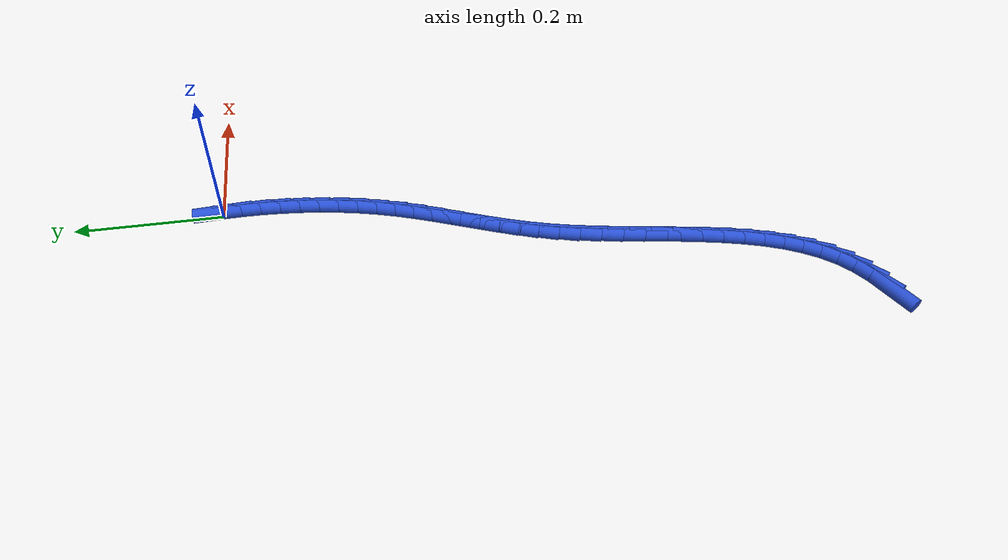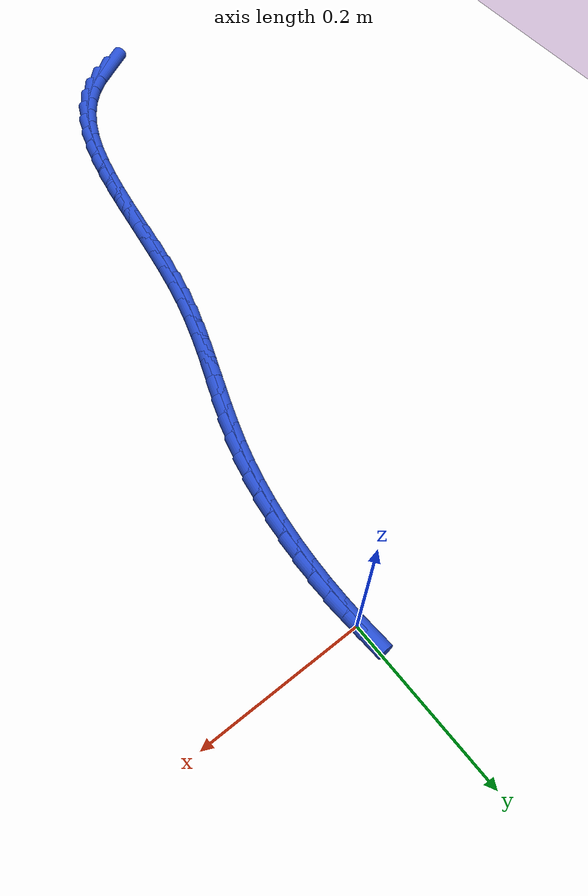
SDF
<sdf version="1.6">
 <world name="default">
  <model name="ground_plane">
   <static>1</static>
   <link name="link">
    <collision name="collision">
     <geometry><plane><normal>0 0 1</normal><size>100 100</size></plane></geometry>
     <surface><friction><ode><mu>100</mu><mu2>50</mu2></ode></friction></surface>
    </collision>
    <visual name="visual">
     <cast_shadows>0</cast_shadows>
     <geometry><plane><normal>0 0 1</normal><size>100 100</size></plane></geometry>
     <material>
      <script><uri>file://media/materials/scripts/gazebo.material</uri><name>Gazebo/WhiteGlow</name></script>
     </material>
    </visual>
   </link>
  </model>
  <model name="line">
   <link name="link_246">
    <pose>-0.25688527165169045 -0.8421262210707687 0.01 0 1.57 0.496279445201238</pose>
    <collision name="collision">
     <geometry><cylinder><radius>0.01</radius><length>0.08</length></cylinder></geometry>
    </collision>
    <visual name="visual">
     <material>
      <script><name>Gazebo/Blue</name><uri>file://media/materials/scripts/gazebo.material</uri></script>
     </material>
     <geometry><cylinder><radius>0.01</radius><length>0.08</length></cylinder></geometry>
    </visual>
   </link>
   <link name="link_247">
    <pose>-0.23576862495839523 -0.8306919512223292 0.01 0 1.57 0.6252751275872817</pose>
    <collision name="collision">
     <geometry><cylinder><radius>0.01</radius><length>0.08</length></cylinder></geometry>
    </collision>
    <visual name="visual">
     <material>
      <script><name>Gazebo/Blue</name><uri>file://media/materials/scripts/gazebo.material</uri></script>
     </material>
     <geometry><cylinder><radius>0.01</radius><length>0.08</length></cylinder></geometry>
    </visual>
   </link>
   <link name="link_248">
    <pose>-0.2168897924790956 -0.8170632679392514 0.01 0 1.57 0.7758045106148511</pose>
    <collision name="collision">
     <geometry><cylinder><radius>0.01</radius><length>0.08</length></cylinder></geometry>
    </collision>
    <visual name="visual">
     <material>
      <script><name>Gazebo/Blue</name><uri>file://media/materials/scripts/gazebo.material</uri></script>
     </material>
     <geometry><cylinder><radius>0.01</radius><length>0.08</length></cylinder></geometry>
    </visual>
   </link>
   <link name="link_249">
    <pose>-0.20045793594150516 -0.8009437079703335 0.01 0 1.57 0.9165554144763786</pose>
    <collision name="collision">
     <geometry><cylinder><radius>0.01</radius><length>0.08</length></cylinder></geometry>
    </collision>
    <visual name="visual">
     <material>
      <script><name>Gazebo/Blue</name><uri>file://media/materials/scripts/gazebo.material</uri></script>
     </material>
     <geometry><cylinder><radius>0.01</radius><length>0.08</length></cylinder></geometry>
    </visual>
   </link>
   <link name="link_250">
    <pose>-0.1863020473997859 -0.7824855533238703 0.01 0 1.57 1.0381443891856466</pose>
    <collision name="collision">
     <geometry><cylinder><radius>0.01</radius><length>0.08</length></cylinder></geometry>
    </collision>
    <visual name="visual">
     <material>
      <script><name>Gazebo/Blue</name><uri>file://media/materials/scripts/gazebo.material</uri></script>
     </material>
     <geometry><cylinder><radius>0.01</radius><length>0.08</length></cylinder></geometry>
    </visual>
   </link>
   <link name="link_251">
    <pose>-0.17418113880750266 -0.761923689226106 0.01 0 1.57 1.139333829120376</pose>
    <collision name="collision">
     <geometry><cylinder><radius>0.01</radius><length>0.08</length></cylinder></geometry>
    </collision>
    <visual name="visual">
     <material>
      <script><name>Gazebo/Blue</name><uri>file://media/materials/scripts/gazebo.material</uri></script>
     </material>
     <geometry><cylinder><radius>0.01</radius><length>0.08</length></cylinder></geometry>
    </visual>
   </link>
   <link name="link_252">
    <pose>-0.16385422211821993 -0.7394930009032834 0.01 0 1.57 1.2211763363873083</pose>
    <collision name="collision">
     <geometry><cylinder><radius>0.01</radius><length>0.08</length></cylinder></geometry>
    </collision>
    <visual name="visual">
     <material>
      <script><name>Gazebo/Blue</name><uri>file://media/materials/scripts/gazebo.material</uri></script>
     </material>
     <geometry><cylinder><radius>0.01</radius><length>0.08</length></cylinder></geometry>
    </visual>
   </link>
   <link name="link_253">
    <pose>-0.1550803092855032 -0.7154283735816483 0.01 0 1.57 1.2857363010760579</pose>
    <collision name="collision">
     <geometry><cylinder><radius>0.01</radius><length>0.08</length></cylinder></geometry>
    </collision>
    <visual name="visual">
     <material>
      <script><name>Gazebo/Blue</name><uri>file://media/materials/scripts/gazebo.material</uri></script>
     </material>
     <geometry><cylinder><radius>0.01</radius><length>0.08</length></cylinder></geometry>
    </visual>
   </link>
   <link name="link_254">
    <pose>-0.147618412262917 -0.6899646924874445 0.01 0 1.57 1.3352447646020846</pose>
    <collision name="collision">
     <geometry><cylinder><radius>0.01</radius><length>0.08</length></cylinder></geometry>
    </collision>
    <visual name="visual">
     <material>
      <script><name>Gazebo/Blue</name><uri>file://media/materials/scripts/gazebo.material</uri></script>
     </material>
     <geometry><cylinder><radius>0.01</radius><length>0.08</length></cylinder></geometry>
    </visual>
   </link>
   <link name="link_255">
    <pose>-0.14122754300402615 -0.6633368428469155 0.01 0 1.57 1.3716775681728643</pose>
    <collision name="collision">
     <geometry><cylinder><radius>0.01</radius><length>0.08</length></cylinder></geometry>
    </collision>
    <visual name="visual">
     <material>
      <script><name>Gazebo/Blue</name><uri>file://media/materials/scripts/gazebo.material</uri></script>
     </material>
     <geometry><cylinder><radius>0.01</radius><length>0.08</length></cylinder></geometry>
    </visual>
   </link>
   <link name="link_256">
    <pose>-0.13566671346239545 -0.6357797098863054 0.01 0 1.57 1.3965974182362657</pose>
    <collision name="collision">
     <geometry><cylinder><radius>0.01</radius><length>0.08</length></cylinder></geometry>
    </collision>
    <visual name="visual">
     <material>
      <script><name>Gazebo/Blue</name><uri>file://media/materials/scripts/gazebo.material</uri></script>
     </material>
     <geometry><cylinder><radius>0.01</radius><length>0.08</length></cylinder></geometry>
    </visual>
   </link>
   <link name="link_257">
    <pose>-0.13069493559158982 -0.6075281788318586 0.01 0 1.57 1.4111242104068298</pose>
    <collision name="collision">
     <geometry><cylinder><radius>0.01</radius><length>0.08</length></cylinder></geometry>
    </collision>
    <visual name="visual">
     <material>
      <script><name>Gazebo/Blue</name><uri>file://media/materials/scripts/gazebo.material</uri></script>
     </material>
     <geometry><cylinder><radius>0.01</radius><length>0.08</length></cylinder></geometry>
    </visual>
   </link>
   <link name="link_258">
    <pose>-0.12607122134517398 -0.5788171349098188 0.01 0 1.57 1.4159534242254757</pose>
    <collision name="collision">
     <geometry><cylinder><radius>0.01</radius><length>0.08</length></cylinder></geometry>
    </collision>
    <visual name="visual">
     <material>
      <script><name>Gazebo/Blue</name><uri>file://media/materials/scripts/gazebo.material</uri></script>
     </material>
     <geometry><cylinder><radius>0.01</radius><length>0.08</length></cylinder></geometry>
    </visual>
   </link>
   <link name="link_259">
    <pose>-0.12155458267671286 -0.5498814633464302 0.01 0 1.57 1.4113832191968494</pose>
    <collision name="collision">
     <geometry><cylinder><radius>0.01</radius><length>0.08</length></cylinder></geometry>
    </collision>
    <visual name="visual">
     <material>
      <script><name>Gazebo/Blue</name><uri>file://media/materials/scripts/gazebo.material</uri></script>
     </material>
     <geometry><cylinder><radius>0.01</radius><length>0.08</length></cylinder></geometry>
    </visual>
   </link>
   <link name="link_260">
    <pose>-0.11690403153977125 -0.5209560493679367 0.01 0 1.57 1.3973340075345175</pose>
    <collision name="collision">
     <geometry><cylinder><radius>0.01</radius><length>0.08</length></cylinder></geometry>
    </collision>
    <visual name="visual">
     <material>
      <script><name>Gazebo/Blue</name><uri>file://media/materials/scripts/gazebo.material</uri></script>
     </material>
     <geometry><cylinder><radius>0.01</radius><length>0.08</length></cylinder></geometry>
    </visual>
   </link>
   <link name="link_261">
    <pose>-0.11187857988791383 -0.49227577820058177 0.01 0 1.57 1.373356728323161</pose>
    <collision name="collision">
     <geometry><cylinder><radius>0.01</radius><length>0.08</length></cylinder></geometry>
    </collision>
    <visual name="visual">
     <material>
      <script><name>Gazebo/Blue</name><uri>file://media/materials/scripts/gazebo.material</uri></script>
     </material>
     <geometry><cylinder><radius>0.01</radius><length>0.08</length></cylinder></geometry>
    </visual>
   </link>
   <link name="link_262">
    <pose>-0.10623723967470573 -0.46407553507061094 0.01 0 1.57 1.3386344517347393</pose>
    <collision name="collision">
     <geometry><cylinder><radius>0.01</radius><length>0.08</length></cylinder></geometry>
    </collision>
    <visual name="visual">
     <material>
      <script><name>Gazebo/Blue</name><uri>file://media/materials/scripts/gazebo.material</uri></script>
     </material>
     <geometry><cylinder><radius>0.01</radius><length>0.08</length></cylinder></geometry>
    </visual>
   </link>
   <link name="link_263">
    <pose>-0.0997390228537117 -0.43659020520426767 0.01 0 1.57 1.2946166025046286</pose>
    <collision name="collision">
     <geometry><cylinder><radius>0.01</radius><length>0.08</length></cylinder></geometry>
    </collision>
    <visual name="visual">
     <material>
      <script><name>Gazebo/Blue</name><uri>file://media/materials/scripts/gazebo.material</uri></script>
     </material>
     <geometry><cylinder><radius>0.01</radius><length>0.08</length></cylinder></geometry>
    </visual>
   </link>
   <link name="link_264">
    <pose>-0.09220388659250826 -0.41000399033423773 0.01 0 1.57 1.2549994453480455</pose>
    <collision name="collision">
     <geometry><cylinder><radius>0.01</radius><length>0.08</length></cylinder></geometry>
    </collision>
    <visual name="visual">
     <material>
      <script><name>Gazebo/Blue</name><uri>file://media/materials/scripts/gazebo.material</uri></script>
     </material>
     <geometry><cylinder><radius>0.01</radius><length>0.08</length></cylinder></geometry>
    </visual>
   </link>
   <link name="link_265">
    <pose>-0.08378166236062898 -0.3842267608559669 0.01 0 1.57 1.2254479847067614</pose>
    <collision name="collision">
     <geometry><cylinder><radius>0.01</radius><length>0.08</length></cylinder></geometry>
    </collision>
    <visual name="visual">
     <material>
      <script><name>Gazebo/Blue</name><uri>file://media/materials/scripts/gazebo.material</uri></script>
     </material>
     <geometry><cylinder><radius>0.01</radius><length>0.08</length></cylinder></geometry>
    </visual>
   </link>
   <link name="link_266">
    <pose>-0.07473327535191929 -0.3590759989740998 0.01 0 1.57 1.2067680733660568</pose>
    <collision name="collision">
     <geometry><cylinder><radius>0.01</radius><length>0.08</length></cylinder></geometry>
    </collision>
    <visual name="visual">
     <material>
      <script><name>Gazebo/Blue</name><uri>file://media/materials/scripts/gazebo.material</uri></script>
     </material>
     <geometry><cylinder><radius>0.01</radius><length>0.08</length></cylinder></geometry>
    </visual>
   </link>
   <link name="link_267">
    <pose>-0.06531973501418852 -0.3343691168256756 0.01 0 1.57 1.1995118944294934</pose>
    <collision name="collision">
     <geometry><cylinder><radius>0.01</radius><length>0.08</length></cylinder></geometry>
    </collision>
    <visual name="visual">
     <material>
      <script><name>Gazebo/Blue</name><uri>file://media/materials/scripts/gazebo.material</uri></script>
     </material>
     <geometry><cylinder><radius>0.01</radius><length>0.08</length></cylinder></geometry>
    </visual>
   </link>
   <link name="link_268">
    <pose>-0.05580205079524597 -0.3099235265477332 0.01 0 1.57 1.2040179805981162</pose>
    <collision name="collision">
     <geometry><cylinder><radius>0.01</radius><length>0.08</length></cylinder></geometry>
    </collision>
    <visual name="visual">
     <material>
      <script><name>Gazebo/Blue</name><uri>file://media/materials/scripts/gazebo.material</uri></script>
     </material>
     <geometry><cylinder><radius>0.01</radius><length>0.08</length></cylinder></geometry>
    </visual>
   </link>
   <link name="link_269">
    <pose>-0.046441232142901044 -0.2855566402773118 0.01 0 1.57 1.2204208021440484</pose>
    <collision name="collision">
     <geometry><cylinder><radius>0.01</radius><length>0.08</length></cylinder></geometry>
    </collision>
    <visual name="visual">
     <material>
      <script><name>Gazebo/Blue</name><uri>file://media/materials/scripts/gazebo.material</uri></script>
     </material>
     <geometry><cylinder><radius>0.01</radius><length>0.08</length></cylinder></geometry>
    </visual>
   </link>
   <link name="link_270">
    <pose>-0.037498288504962715 -0.26108587015144946 0.01 0 1.57 1.2486224931995455</pose>
    <collision name="collision">
     <geometry><cylinder><radius>0.01</radius><length>0.08</length></cylinder></geometry>
    </collision>
    <visual name="visual">
     <material>
      <script><name>Gazebo/Blue</name><uri>file://media/materials/scripts/gazebo.material</uri></script>
     </material>
     <geometry><cylinder><radius>0.01</radius><length>0.08</length></cylinder></geometry>
    </visual>
   </link>
   <link name="link_271">
    <pose>-0.029234229329240906 -0.23632862830718668 0.01 0 1.57 1.2880223422184913</pose>
    <collision name="collision">
     <geometry><cylinder><radius>0.01</radius><length>0.08</length></cylinder></geometry>
    </collision>
    <visual name="visual">
     <material>
      <script><name>Gazebo/Blue</name><uri>file://media/materials/scripts/gazebo.material</uri></script>
     </material>
     <geometry><cylinder><radius>0.01</radius><length>0.08</length></cylinder></geometry>
    </visual>
   </link>
   <link name="link_272">
    <pose>-0.021905766754923558 -0.21110677974607356 0.01 0 1.57 1.3320642175414859</pose>
    <collision name="collision">
     <geometry><cylinder><radius>0.01</radius><length>0.08</length></cylinder></geometry>
    </collision>
    <visual name="visual">
     <material>
      <script><name>Gazebo/Blue</name><uri>file://media/materials/scripts/gazebo.material</uri></script>
     </material>
     <geometry><cylinder><radius>0.01</radius><length>0.08</length></cylinder></geometry>
    </visual>
   </link>
   <link name="link_273">
    <pose>-0.01564295665732909 -0.18537343049335867 0.01 0 1.57 1.374025011605896</pose>
    <collision name="collision">
     <geometry><cylinder><radius>0.01</radius><length>0.08</length></cylinder></geometry>
    </collision>
    <visual name="visual">
     <material>
      <script><name>Gazebo/Blue</name><uri>file://media/materials/scripts/gazebo.material</uri></script>
     </material>
     <geometry><cylinder><radius>0.01</radius><length>0.08</length></cylinder></geometry>
    </visual>
   </link>
   <link name="link_274">
    <pose>-0.010431494773912501 -0.15923127232469492 0.01 0 1.57 1.4139170726742794</pose>
    <collision name="collision">
     <geometry><cylinder><radius>0.01</radius><length>0.08</length></cylinder></geometry>
    </collision>
    <visual name="visual">
     <material>
      <script><name>Gazebo/Blue</name><uri>file://media/materials/scripts/gazebo.material</uri></script>
     </material>
     <geometry><cylinder><radius>0.01</radius><length>0.08</length></cylinder></geometry>
    </visual>
   </link>
   <link name="link_275">
    <pose>-0.006249219748046135 -0.13279113852440766 0.01 0 1.57 1.4521087878532093</pose>
    <collision name="collision">
     <geometry><cylinder><radius>0.01</radius><length>0.08</length></cylinder></geometry>
    </collision>
    <visual name="visual">
     <material>
      <script><name>Gazebo/Blue</name><uri>file://media/materials/scripts/gazebo.material</uri></script>
     </material>
     <geometry><cylinder><radius>0.01</radius><length>0.08</length></cylinder></geometry>
    </visual>
   </link>
   <link name="link_276">
    <pose>-0.0030739702231023483 -0.10616386237682206 0.01 0 1.57 1.48895365976989</pose>
    <collision name="collision">
     <geometry><cylinder><radius>0.01</radius><length>0.08</length></cylinder></geometry>
    </collision>
    <visual name="visual">
     <material>
      <script><name>Gazebo/Blue</name><uri>file://media/materials/scripts/gazebo.material</uri></script>
     </material>
     <geometry><cylinder><radius>0.01</radius><length>0.08</length></cylinder></geometry>
    </visual>
   </link>
   <link name="link_277">
    <pose>-0.0008835848424534865 -0.07946027716626333 0.01 0 1.57 1.5247948387857762</pose>
    <collision name="collision">
     <geometry><cylinder><radius>0.01</radius><length>0.08</length></cylinder></geometry>
    </collision>
    <visual name="visual">
     <material>
      <script><name>Gazebo/Blue</name><uri>file://media/materials/scripts/gazebo.material</uri></script>
     </material>
     <geometry><cylinder><radius>0.01</radius><length>0.08</length></cylinder></geometry>
    </visual>
   </link>
   <link name="link_278">
    <pose>0.0003440977505280991 -0.052791216177056746 0.01 0 1.57 1.5599709175381944</pose>
    <collision name="collision">
     <geometry><cylinder><radius>0.01</radius><length>0.08</length></cylinder></geometry>
    </collision>
    <visual name="visual">
     <material>
      <script><name>Gazebo/Blue</name><uri>file://media/materials/scripts/gazebo.material</uri></script>
     </material>
     <geometry><cylinder><radius>0.01</radius><length>0.08</length></cylinder></geometry>
    </visual>
   </link>
   <link name="link_279">
    <pose>0.0006312389124700502 -0.02626751269352673 0.01 0 1.57 -1.5467697868978376</pose>
    <collision name="collision">
     <geometry><cylinder><radius>0.01</radius><length>0.08</length></cylinder></geometry>
    </collision>
    <visual name="visual">
     <material>
      <script><name>Gazebo/Blue</name><uri>file://media/materials/scripts/gazebo.material</uri></script>
     </material>
     <geometry><cylinder><radius>0.01</radius><length>0.08</length></cylinder></geometry>
    </visual>
   </link>
   <link name="link_280">
    <pose>-8.673617379884035e-19 -1.1796119636642288e-16 0.01 0 1.57 -1.5118904684776993</pose>
    <collision name="collision">
     <geometry><cylinder><radius>0.01</radius><length>0.08</length></cylinder></geometry>
    </collision>
    <visual name="visual">
     <material>
      <script><name>Gazebo/Blue</name><uri>file://media/materials/scripts/gazebo.material</uri></script>
     </material>
     <geometry><cylinder><radius>0.01</radius><length>0.08</length></cylinder></geometry>
    </visual>
   </link>
  </model>
 </world>
</sdf>
